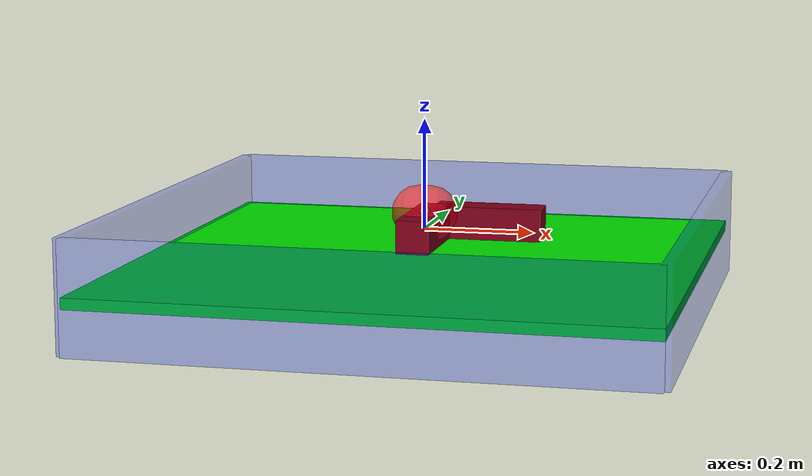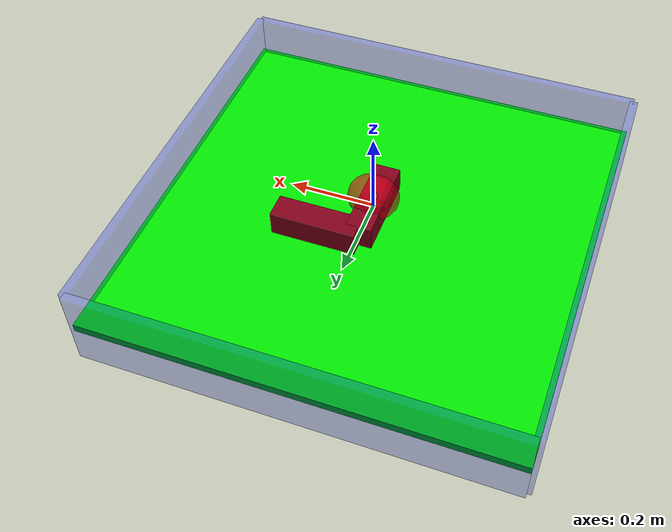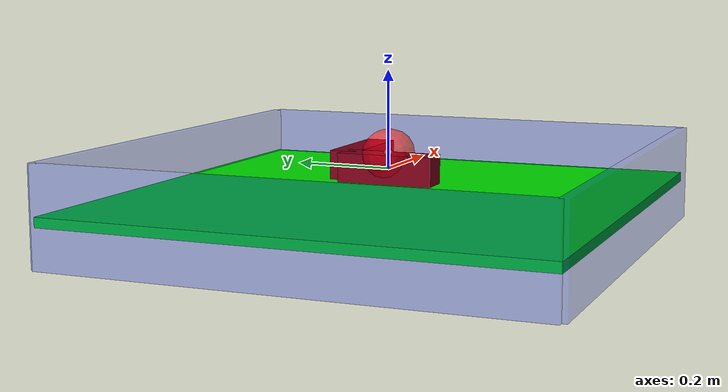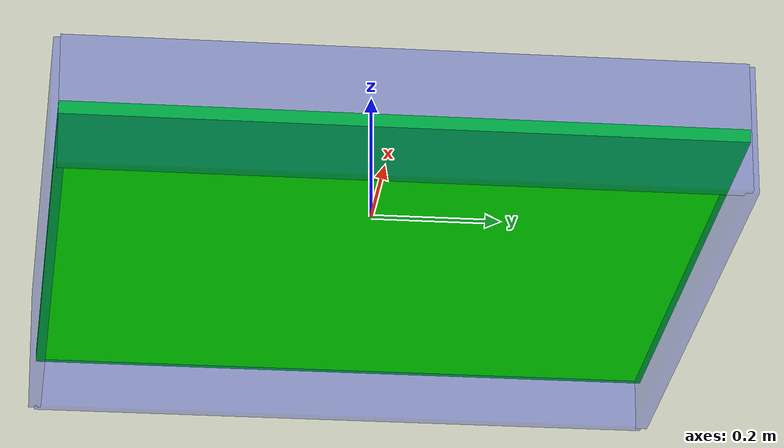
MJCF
<mujoco model="pushing2d_vellimited">

    <compiler inertiafromgeom="auto" angle="radian" coordinate="local" />
    <size njmax="2000" nconmax="500"/>
    <option timestep="0.01" gravity="0 0 -9.81" iterations="20" integrator="Euler" />
    <default>
        <joint limited="false" damping="1" />
        <geom contype="1" conaffinity="1" condim="4" friction=".5 .1 .1" density="1000" margin="0.002" />
    </default>

    <worldbody>
        <camera name="maincam" mode= "fixed" fovy="75" euler="0 0 0" pos="0 0 .75"/>
        <body name="particle" pos="0 0 0.03">
            <inertial pos="0 0 0" mass="5" diaginertia="166.667 166.667 166.667"/>
            <geom name="particle_geom" type="capsule" fromto="-0.01 0 0 0.01 0 0" size="0.05" rgba="0.9 0 0.1 0.6" />
            <site name="particle_site" pos="0 0 0" size="0.01" />
            <joint name="ball_x" type="slide" pos="0 0 0" axis="1 0 0" maxvel="0.4"/>
            <joint name="ball_y" type="slide" pos="0 0 0" axis="0 1 0" maxvel="0.4"/>
        </body>

        <body name="container" pos="0  0  -0.05">

            <body name="border_front" pos="0 -.5  0">
                 <geom type="box" size=".5 .01 .1" rgba="0 .1 .9 .3"/>
            </body>

            <body name="border_rear" pos="0 .5  0">
                 <geom type="box" size=".5 .01 .1" rgba="0 .1 .9 .3"/>
            </body>

            <body name="border_right" pos=".5 0  0">
                 <geom type="box" size=".01  .5 .1" rgba="0 .1 .9 .3"/>
            </body>

            <body name="border_left" pos="-.5 0  0">
                 <geom type="box" size=".01  .5 .1" rgba="0 .1 .9 .3"/>
            </body>

            <body name="table" pos="0 0 -.01">
                 <geom type="box" size=".5  .5 .01" rgba="0 .9 0 1"/>
            </body>
        </body>

        <body name="object1" pos="0 0 0">
            <joint type="free"/>
            <geom type="box" size=".03 .1 .03" rgba="0.5 0.0 0.1 1" />
            <geom pos=".1 .1 0.0" type="box" size=".1 0.03 .03" rgba="0.5 0.0 0.1 1" />
        </body>

        <body name="object2" pos="0 0 0">
            <joint type="free"/>
            <geom type="box" size=".03 .1 .03" rgba="0.5 0.0 0.1 1" />
            <geom pos=".1 .1 0.0" type="box" size=".1 0.03 .03" rgba="0.5 0.0 0.1 1" />
        </body>

        <body name="object3" pos="0 0 0">
            <joint type="free"/>
            <geom type="box" size=".03 .1 .03" rgba="0.5 0.0 0.1 1" />
            <geom pos=".1 .1 0.0" type="box" size=".1 0.03 .03" rgba="0.5 0.0 0.1 1" />
        </body>

        <body name="object4" pos="0 0 0">
            <joint type="free"/>
            <geom type="box" size=".03 .1 .03" rgba="0.5 0.0 0.1 1" />
            <geom pos=".1 .1 0.0" type="box" size=".1 0.03 .03" rgba="0.5 0.0 0.1 1" />
        </body>

    </worldbody>

    <actuator>
        <motor joint="ball_x" ctrlrange="-100.0 100.0" ctrllimited="true" />
        <motor joint="ball_y" ctrlrange="-100.0 100.0" ctrllimited="true" />
    </actuator>
</mujoco>
